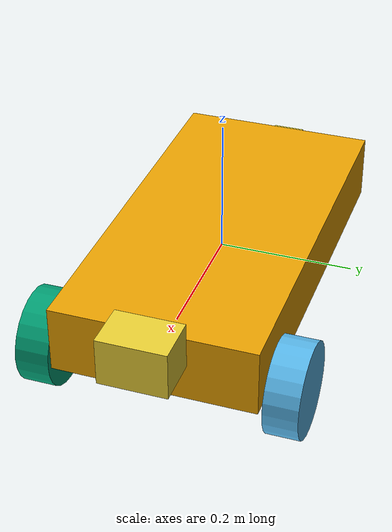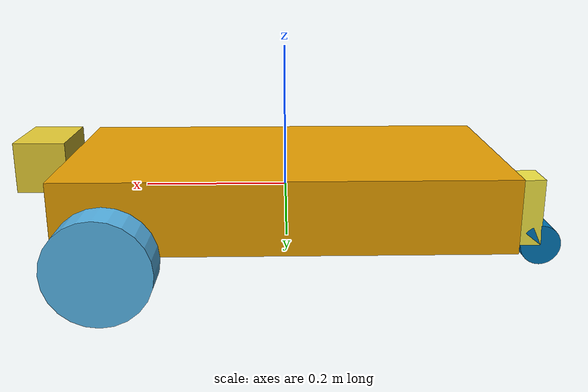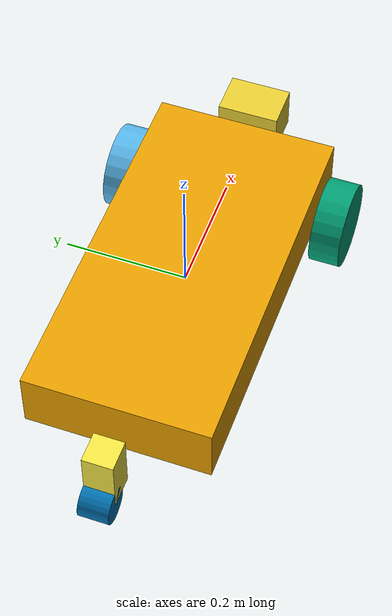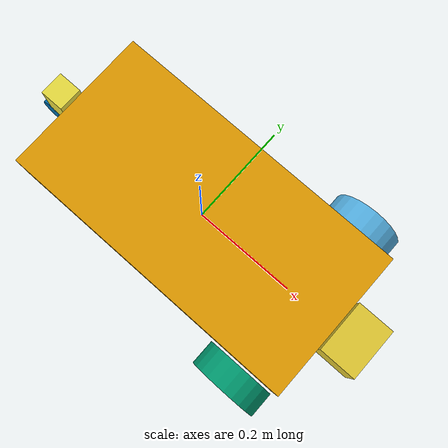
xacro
<?xml version="1.0" encoding="utf-8"?>

<robot xmlns:xacro="http://www.ros.org/wiki/xacro" name="differentialRobot_v003">

 <xacro:include filename="$(find robot_description)/urdf/differential/differentialRobot_v003/xacro_include/wheel.xacro" />
 <xacro:include filename="$(find robot_description)/urdf/differential/differentialRobot_v003/xacro_include/inertia.xacro" />
 <xacro:include filename="$(find robot_description)/urdf/differential/differentialRobot_v003/xacro_include/caster.xacro" />
 <xacro:include filename="$(find robot_description)/urdf/differential/differentialRobot_v003/xacro_include/base.xacro" />
 <xacro:include filename="$(find robot_description)/urdf/differential/differentialRobot_v003/xacro_include/laser.xacro" />
 <xacro:include filename="$(find robot_description)/urdf/differential/differentialRobot_v003/xacro_include/properties.xacro" />
 <xacro:include filename="$(find robot_description)/urdf/differential/differentialRobot_v003/xacro_include/gazebo_colors.xacro" />

 <xacro:base/>
 <xacro:wheel lr="left" tY="1"/>
 <xacro:wheel lr="right" tY="-1"/>
 <xacro:caster/>
 <xacro:laser/>

 <gazebo>
    <plugin name="differential_drive_controller" filename="libgazebo_ros_diff_drive.so">
      <leftJoint>left_wheel_joint</leftJoint>
      <rightJoint>right_wheel_joint</rightJoint>
      <robotBaseFrame>base_link</robotBaseFrame>
      <wheelSeparation>${wheel_width + base_dim_Y}</wheelSeparation>
      <wheelDiameter>${wheel_radius*2}</wheelDiameter>
      <publishWheelJointState>true</publishWheelJointState>
    </plugin>
  </gazebo>

  <gazebo>
    <plugin name="joint_state_publisher" filename="libgazebo_ros_joint_state_publisher.so">
      <jointName>caster_joint, wheel_caster_joint</jointName>
    </plugin>
  </gazebo>

</robot>

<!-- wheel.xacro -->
<robot name="wheel" xmlns:xacro="http://www.ros.org/wiki/xacro">
      <xacro:macro name="wheel" params="lr tY">
       <link name="${lr}_wheel_link">
        <collision>
          <origin xyz="0 0 0" rpy="0 ${PI/2} ${(-PI/2)*tY}" />
          <geometry>
              <cylinder length="${wheel_width}" radius="${wheel_radius}"/>
          </geometry>
        </collision>

        <visual>
          <origin xyz="0 0 0" rpy="0 ${PI/2} ${(-PI/2)*tY}" />
          <geometry>
              <cylinder length="${wheel_width}" radius="${wheel_radius}"/>
          </geometry>
        </visual>

        <inertial>
          <origin xyz="0 0 0" rpy="0 ${PI/2} ${(-PI/2)*tY}" />
          <mass value="${wheel_mass}"/>
          <cylinder_inertia m="${wheel_mass}" r="${wheel_radius}" h="${wheel_width}"/>
        </inertial>
       </link>

       <joint name="${lr}_wheel_joint" type="continuous">
          <parent link="base_link"/>
          <child link="${lr}_wheel_link"/>
          <origin xyz="${wheel_pos_X} ${tY*((base_dim_Y/2) + (wheel_width/2)+ wheel_dist)} ${wheel_pos_Z}" rpy="0 0 0" />
          <axis xyz="0 1 0" rpy="0 0 0" />
          <limit effort="100" velocity="100"/>
          <joint_properties damping="0.0" friction="0.0"/>
        </joint>

     </xacro:macro>

</robot>

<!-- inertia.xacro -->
<robot name="macros_inertia" xmlns:xacro="http://www.ros.org/wiki/xacro">

 <xacro:macro name="cylinder_inertia" params="m r h">
    <inertia  ixx="${m*(3*r*r+h*h)/12}" ixy = "0" ixz = "0"
                  iyy="${m*(3*r*r+h*h)/12}" iyz = "0"
                  izz="${m*r*r/2}" />
 </xacro:macro>

 <xacro:macro name="box_inertia" params="m x y z">
  <inertia  ixx="${m*(y*y+z*z)/12}" ixy = "0" ixz = "0"
                  iyy="${m*(x*x+z*z)/12}" iyz = "0"
                  izz="${m*(x*x+z*z)/12}" />
 </xacro:macro>

 <xacro:macro name="sphere_inertia" params="m r">
  <inertia  ixx="${2*m*r*r/5}" ixy = "0" ixz = "0"
                  iyy="${2*m*r*r/5}" iyz = "0"
                  izz="${2*m*r*r/5}" />
 </xacro:macro>

</robot>

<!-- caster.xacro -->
<robot name="caster" xmlns:xacro="http://www.ros.org/wiki/xacro">
      <xacro:macro name="caster">

      <link name="caster_link">

        <visual>
          <origin xyz="0 0 0" rpy="0 0 0" />
          <geometry>
               <box size="${caster_dim_X} ${caster_dim_Y} ${caster_dim_Z}"/>
          </geometry>
         </visual>

        <collision>
          <origin xyz="0 0 0" rpy="0 0 0" />
          <geometry>
              <box size="${caster_dim_X} ${caster_dim_Y} ${caster_dim_Z}"/>
          </geometry>
         </collision>

        <inertial>
          <origin xyz="0 0 0" rpy="0 0 0" />
          <mass value="${caster_mass}"/>
          <box_inertia m="${caster_mass}" x="${caster_dim_X}" y= "${caster_dim_Y}" z="${caster_dim_Z}"/>
         </inertial>
       </link>

      <joint name="caster_joint" type="continuous">
          <parent link="base_link"/>
          <child link="caster_link"/>
          <origin xyz="${(-(base_dim_X/2))-caster_dim_X} 0 ${-((wheel_radius+(base_dim_Z/2))-((caster_dim_Z/2)+(wheel_caster_radius)))}" rpy="0 0 0" />
          <axis xyz="0 0 1" rpy="0 0 0" />
          <limit effort="100" velocity="100"/>
          <joint_properties damping="0.0" friction="0.0"/>
         </joint>

      <link name="wheel_caster_link">

         <visual>
           <origin xyz="0 0 0" rpy="${PI/2} 0 0" />
           <geometry>
                <cylinder length="${wheel_caster_lenght}" radius="${wheel_caster_radius}"/>
           </geometry>
         </visual>

         <collision>
           <origin xyz="0 0 0" rpy="${PI/2} 0 0" />
           <geometry>
               <cylinder length="${wheel_caster_lenght}" radius="${wheel_caster_radius}"/>
           </geometry>
         </collision>

         <inertial>
           <origin xyz="0 0 0" rpy="0 0 0" />
           <mass value="${wheel_caster_mass}"/>
           <cylinder_inertia m="${wheel_caster_mass}" r="${wheel_caster_radius}" h="${wheel_caster_lenght}"/>
         </inertial>
         </link>

      <joint name="wheel_caster_joint" type="continuous">
          <parent link="caster_link"/>
          <child link="wheel_caster_link"/>
          <origin xyz="${-(caster_dim_X/2)} 0 ${-(caster_dim_Z/2)} " rpy="0 0 0" />
          <axis xyz="0 1 0" rpy="0 0 0" />
          <limit effort="100" velocity="100"/>
          <joint_properties damping="0.0" friction="0.0"/>
         </joint>

     </xacro:macro>

</robot>

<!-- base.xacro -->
<robot name="base" xmlns:xacro="http://www.ros.org/wiki/xacro">
      <xacro:macro name="base">

   <link name="base_link">

    <visual>
      <origin xyz="0 0 0" rpy="0 0 0"/>
      <geometry>
          <box size="${base_dim_X} ${base_dim_Y} ${base_dim_Z}"/>
      </geometry>
    </visual>

     <collision>
      <origin xyz="0 0 0" rpy="0 0 0"/>
      <geometry>
          <box size="${base_dim_X} ${base_dim_Y} ${base_dim_Z}"/>
      </geometry>
    </collision>

    <inertial>
      <origin xyz="0 0 0" rpy="0 0 0"/>
      <mass value="${base_mass}"/>
      <box_inertia m="${base_mass}" x="${base_dim_X}" y="${base_dim_Y}" z="${base_dim_Z}"/>
    </inertial>

  </link>

     </xacro:macro>

</robot>

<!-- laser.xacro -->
<robot name="laser" xmlns:xacro="http://www.ros.org/wiki/xacro">
  <xacro:macro name="laser">

  <link name="hokuyo_link">
    <visual>
      <origin xyz="0 0 0" rpy="0 0 0" />
      <geometry>
          <box size="${laser_dim_X} ${laser_dim_Y} ${laser_dim_Z}"/>
      </geometry>
    </visual>
  </link>

  <joint name="hokuyo_joint" type="fixed">
    <axis xyz="0 1 0" />
    <origin xyz="${(base_dim_X/2) + (laser_dim_X/2)} 0 0.04" rpy="0 0 0"/>
    <parent link="base_link"/>
    <child link="hokuyo_link"/>
  </joint>

   <gazebo reference="hokuyo_link">
    <sensor type="ray" name="hokuyo">
      <pose>0 0 0 0 0 0</pose>
      <visualize>false</visualize>
      <update_rate>40</update_rate>
      <ray>
        <scan>
          <horizontal>
            <samples>720</samples>
            <resolution>1</resolution>
            <min_angle>-1.570796</min_angle>
            <max_angle>1.570796</max_angle>
          </horizontal>
        </scan>
        <range>
          <min>0.10</min>
          <max>30.0</max>
          <resolution>0.01</resolution>
        </range>
      </ray>
      <plugin name="gpu_laser" filename="libgazebo_ros_laser.so">
        <topicName>/scan</topicName>
        <frameName>hokuyo_link</frameName>
      </plugin>
    </sensor>
  </gazebo>

     </xacro:macro>

</robot>

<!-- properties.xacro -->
<robot name="properties" xmlns:xacro="http://www.ros.org/wiki/xacro">

  <xacro:property name="PI" value="3.1415926535897931"/>

  <xacro:property name="base_dim_X" value="0.6"/>
  <xacro:property name="base_dim_Y" value="0.3"/>
  <xacro:property name="base_dim_Z" value="0.1"/>
  <xacro:property name="base_mass" value="20"/>

  <xacro:property name="laser_dim_X" value="0.07"/>
  <xacro:property name="laser_dim_Y" value="0.1"/>
  <xacro:property name="laser_dim_Z" value="0.07"/>

  <xacro:property name="wheel_width" value="0.05"/>
  <xacro:property name="wheel_radius" value="0.07"/>
  <xacro:property name="wheel_dist" value="${(wheel_width/10)}"/>
  <xacro:property name="wheel_pos_X" value="${(base_dim_X/2) - wheel_radius}"/>
  <xacro:property name="wheel_pos_Z" value="${(wheel_width)*-1}"/>
  <xacro:property name="wheel_mass" value="5"/>

  <xacro:property name="caster_dim_X" value="0.05"/>
  <xacro:property name="caster_dim_Y" value="0.05"/>
  <xacro:property name="caster_dim_Z" value="0.1"/>
  <xacro:property name="caster_mass" value="1"/>

  <xacro:property name="wheel_caster_lenght" value="0.05"/>
  <xacro:property name="wheel_caster_radius" value="0.03"/>
  <xacro:property name="wheel_caster_mass" value="1"/>

</robot>
